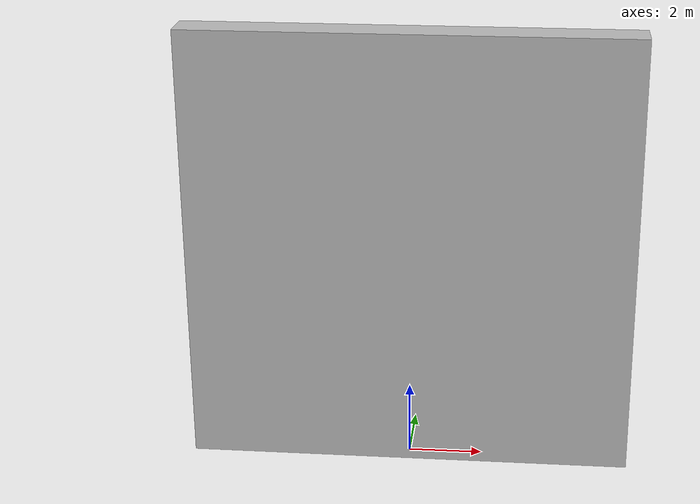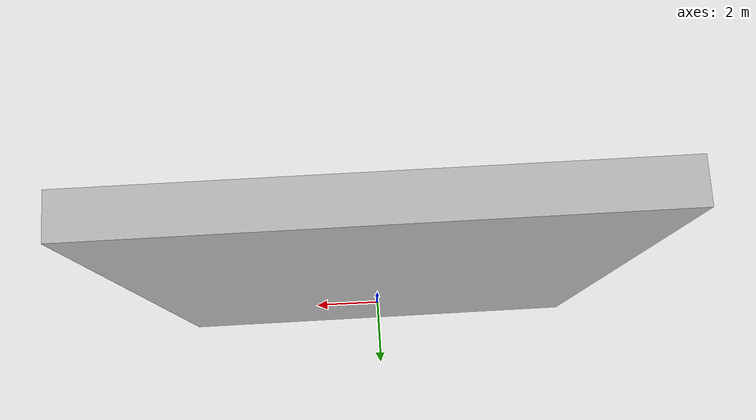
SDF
<?xml version="1.0" ?>
<sdf version="1.5">
<model name='mywall'>
      <static>1</static>
      <link name='link'>
        <inertial>
          <mass>10000</mass>
          <inertia>
            <ixx>583.556</ixx>
            <ixy>0</ixy>
            <ixz>0</ixz>
            <iyy>1678.8</iyy>
            <iyz>0</iyz>
            <izz>1111.54</izz>
          </inertia>
          <pose>0 0 0 0 -0 0</pose>
        </inertial>
        <self_collide>0</self_collide>
        <enable_wind>0</enable_wind>
        <pose>0 0 6 -0 -0 -0</pose>
        <visual name='visual'>
          <geometry>
            <box>
              <size>12 1 12</size>
            </box>
          </geometry>
          <material>
            <script>
              <name>Concrete/Diffuse</name>
              <uri>model://interaction_wall/materials/concretewall.material</uri>
            </script>
          </material>
          <pose>0 0 0 0 -0 0</pose>
          <transparency>0</transparency>
          <cast_shadows>1</cast_shadows>
        </visual>
        <collision name='collision'>
          <laser_retro>0</laser_retro>
          <max_contacts>10</max_contacts>
          <pose>0 0 0 0 -0 0</pose>
          <geometry>
            <box>
              <size>12 1 12</size>
            </box>
          </geometry>
          <surface>
            <friction>
              <ode/>
              <torsional>
                <ode/>
              </torsional>
            </friction>
            <contact>
              <ode/>
            </contact>
            <bounce/>
          </surface>
          <mu1>1</mu1>
          <mu2>1</mu2>
        </collision>
        <kinematic>0</kinematic>
      </link>
      <allow_auto_disable>1</allow_auto_disable>
    </model>
</sdf>
